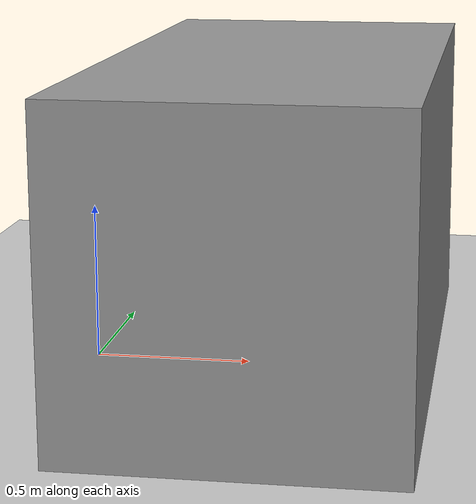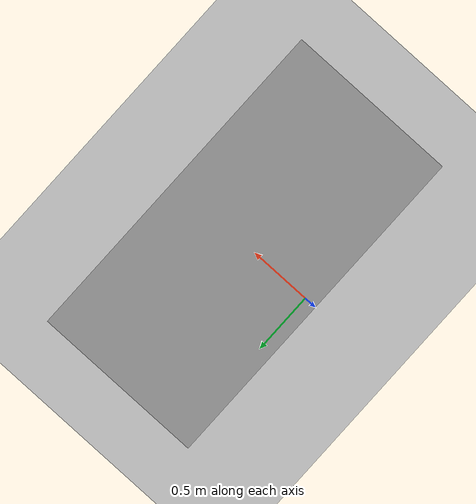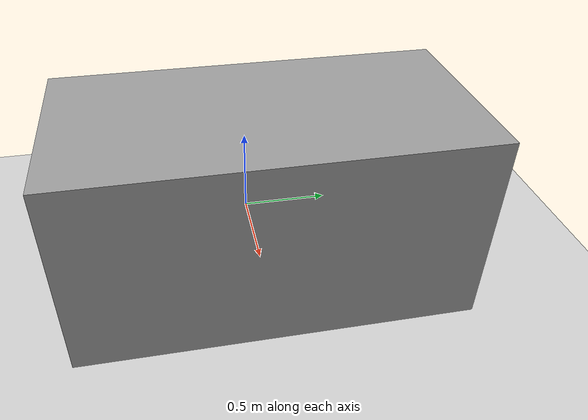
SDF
<sdf version='1.7'>
  <world name='default'>
    <plugin name='gazebo_ros_state' filename='libgazebo_ros_state.so'>
      <ros>
        <namespace>/demo</namespace>
        <argument>model_states:=model_states_demo</argument>
        <argument>link_states:=link_states_demo</argument>
      </ros>
      <update_rate>1.0</update_rate>
    </plugin>
    <light name='sun' type='directional'>
      <cast_shadows>1</cast_shadows>
      <pose>0 0 10 0 -0 0</pose>
      <diffuse>0.8 0.8 0.8 1</diffuse>
      <specular>0.2 0.2 0.2 1</specular>
      <attenuation>
        <range>1000</range>
        <constant>0.9</constant>
        <linear>0.01</linear>
        <quadratic>0.001</quadratic>
      </attenuation>
      <direction>-0.5 0.1 -0.9</direction>
      <spot>
        <inner_angle>0</inner_angle>
        <outer_angle>0</outer_angle>
        <falloff>0</falloff>
      </spot>
    </light>
    <model name='ground_plane'>
      <static>1</static>
      <link name='link'>
        <collision name='collision'>
          <geometry>
            <plane>
              <normal>0 0 1</normal>
              <size>100 100</size>
            </plane>
          </geometry>
          <surface>
            <friction>
              <ode>
                <mu>100</mu>
                <mu2>50</mu2>
              </ode>
              <torsional>
                <ode/>
              </torsional>
            </friction>
            <contact>
              <ode/>
            </contact>
            <bounce/>
          </surface>
          <max_contacts>10</max_contacts>
        </collision>
        <visual name='visual'>
          <cast_shadows>0</cast_shadows>
          <geometry>
            <plane>
              <normal>0 0 1</normal>
              <size>100 100</size>
            </plane>
          </geometry>
          <material>
            <script>
              <uri>file://media/materials/scripts/gazebo.material</uri>
              <name>Gazebo/Grey</name>
            </script>
          </material>
        </visual>
        <self_collide>0</self_collide>
        <enable_wind>0</enable_wind>
        <kinematic>0</kinematic>
      </link>
    </model>
    <gravity>0 0 -9.8</gravity>
    <magnetic_field>6e-06 2.3e-05 -4.2e-05</magnetic_field>
    <atmosphere type='adiabatic'/>
    <physics type='ode'>
      <max_step_size>0.001</max_step_size>
      <real_time_factor>1</real_time_factor>
      <real_time_update_rate>1000</real_time_update_rate>
    </physics>
    <scene>
      <ambient>0.4 0.4 0.4 1</ambient>
      <background>0.7 0.7 0.7 1</background>
      <shadows>1</shadows>
    </scene>
    <wind/>
    <spherical_coordinates>
      <surface_model>EARTH_WGS84</surface_model>
      <latitude_deg>0</latitude_deg>
      <longitude_deg>0</longitude_deg>
      <elevation>0</elevation>
      <heading_deg>0</heading_deg>
    </spherical_coordinates>
    <gui fullscreen='0'>
      <camera name='user_camera'>
        <pose>1.78616 -1.52807 2.22876 0 0.625793 2.33857</pose>
        <view_controller>orbit</view_controller>
        <projection_type>perspective</projection_type>
      </camera>
    </gui>
    <model name='table'>
      <link name='link'>
        <inertial>
          <mass>1</mass>
          <inertia>
            <ixx>0.166667</ixx>
            <ixy>0</ixy>
            <ixz>0</ixz>
            <iyy>0.166667</iyy>
            <iyz>0</iyz>
            <izz>0.166667</izz>
          </inertia>
          <pose>0 0 0 0 -0 0</pose>
        </inertial>
        <self_collide>0</self_collide>
        <enable_wind>0</enable_wind>
        <kinematic>0</kinematic>
        <pose>0 0 0 0 -0 0</pose>
        <gravity>1</gravity>
        <visual name='visual'>
          <geometry>
            <box>
              <size>1 2 1</size>
            </box>
          </geometry>
          <material>
            <script>
              <name>Gazebo/Grey</name>
              <uri>file://media/materials/scripts/gazebo.material</uri>
            </script>
            <shader type='pixel'>
              <normal_map>__default__</normal_map>
            </shader>
            <ambient>0.3 0.3 0.3 1</ambient>
            <diffuse>0.7 0.7 0.7 1</diffuse>
            <specular>0.01 0.01 0.01 1</specular>
            <emissive>0 0 0 1</emissive>
          </material>
          <pose>0 0 0 0 -0 0</pose>
          <transparency>0</transparency>
          <cast_shadows>1</cast_shadows>
        </visual>
        <collision name='collision'>
          <laser_retro>0</laser_retro>
          <max_contacts>10</max_contacts>
          <pose>0 0 0 0 -0 0</pose>
          <geometry>
            <box>
              <size>1 1.93672 1</size>
            </box>
          </geometry>
          <surface>
            <friction>
              <ode>
                <mu>1</mu>
                <mu2>1</mu2>
                <fdir1>0 0 0</fdir1>
                <slip1>0</slip1>
                <slip2>0</slip2>
              </ode>
              <torsional>
                <coefficient>1</coefficient>
                <patch_radius>0</patch_radius>
                <surface_radius>0</surface_radius>
                <use_patch_radius>1</use_patch_radius>
                <ode>
                  <slip>0</slip>
                </ode>
              </torsional>
            </friction>
            <bounce>
              <restitution_coefficient>0</restitution_coefficient>
              <threshold>1e+06</threshold>
            </bounce>
            <contact>
              <collide_without_contact>0</collide_without_contact>
              <collide_without_contact_bitmask>1</collide_without_contact_bitmask>
              <collide_bitmask>1</collide_bitmask>
              <ode>
                <soft_cfm>0</soft_cfm>
                <soft_erp>0.2</soft_erp>
                <kp>1e+13</kp>
                <kd>1</kd>
                <max_vel>0.01</max_vel>
                <min_depth>0</min_depth>
              </ode>
              <bullet>
                <split_impulse>1</split_impulse>
                <split_impulse_penetration_threshold>-0.01</split_impulse_penetration_threshold>
                <soft_cfm>0</soft_cfm>
                <soft_erp>0.2</soft_erp>
                <kp>1e+13</kp>
                <kd>1</kd>
              </bullet>
            </contact>
          </surface>
        </collision>
      </link>
      <static>0</static>
      <allow_auto_disable>1</allow_auto_disable>
      <pose>0.6 0.000565 0.5 0 -0 0</pose>
    </model>
  </world>
</sdf>
